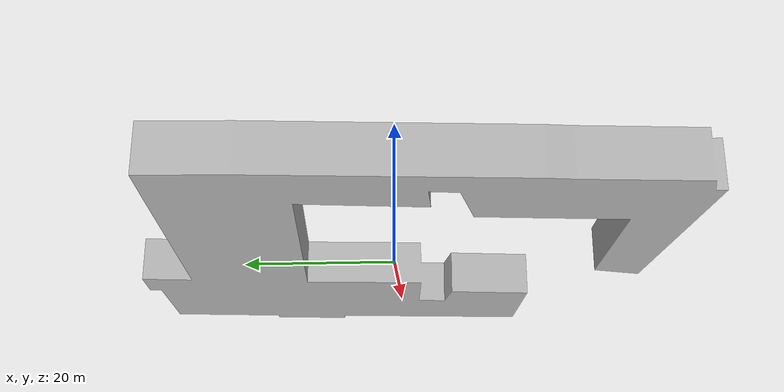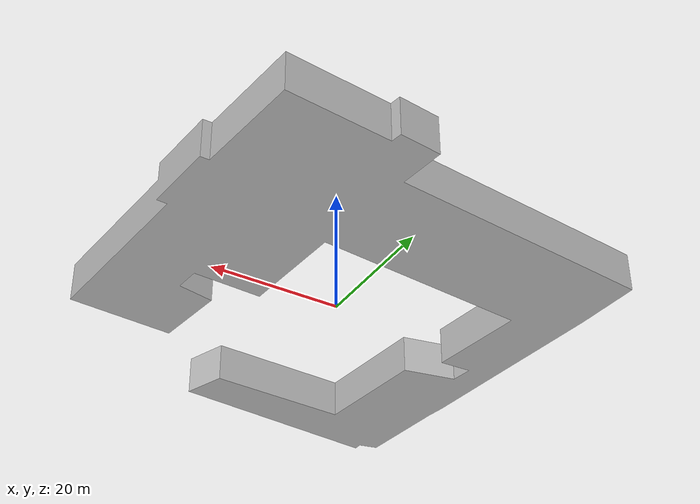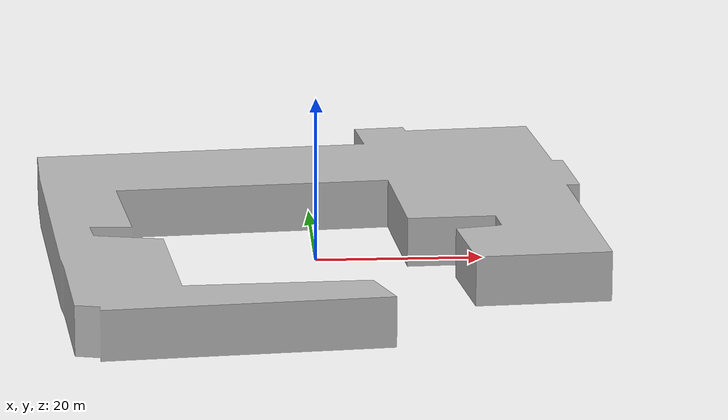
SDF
<?xml version="1.0" ?>
<sdf version="1.7">
  <model name="building_0837_assumed_a_bombeiros">
    <static>true</static>
    <link name="building_link">
      <visual name="building_visual">
        <geometry>
          <mesh>
            <uri>model://building_0837_assumed_a_bombeiros/meshes/construction_0837_assumed_A_Bombeiros_h6m.obj</uri>
          </mesh>
        </geometry>
      </visual>
    <collision name="building_collision">
      <geometry>
        <mesh>
          <uri>model://building_0837_assumed_a_bombeiros/meshes/construction_0837_assumed_A_Bombeiros_h6m.obj</uri>
        </mesh>
      </geometry>
    </collision>
    </link>
  </model>
</sdf>
